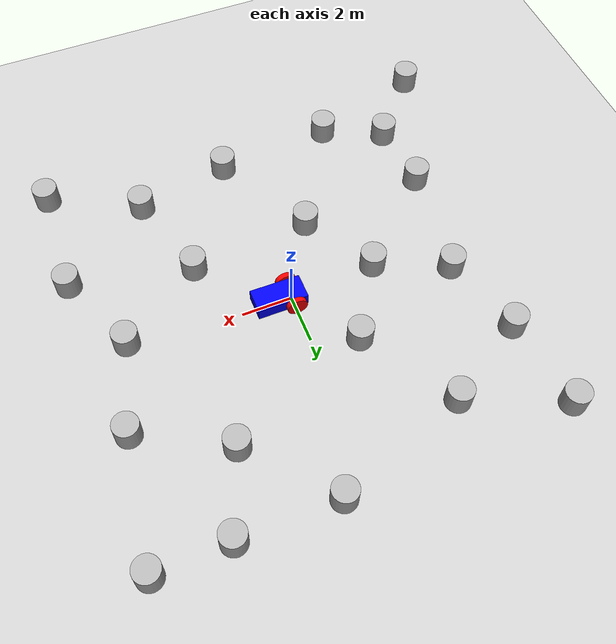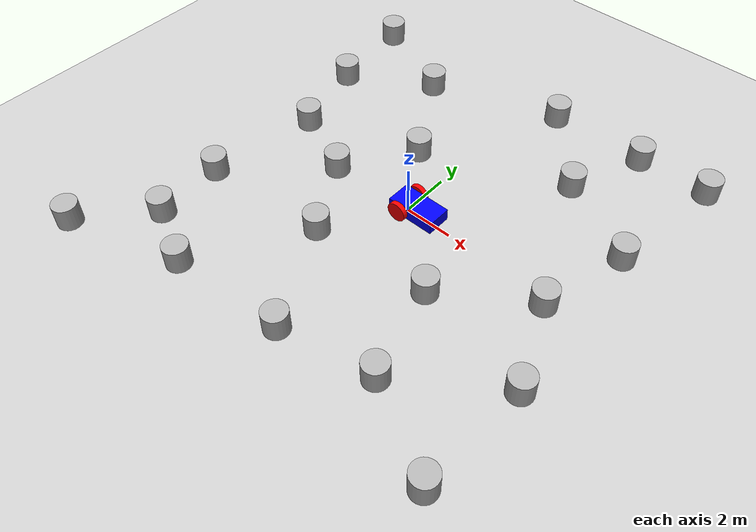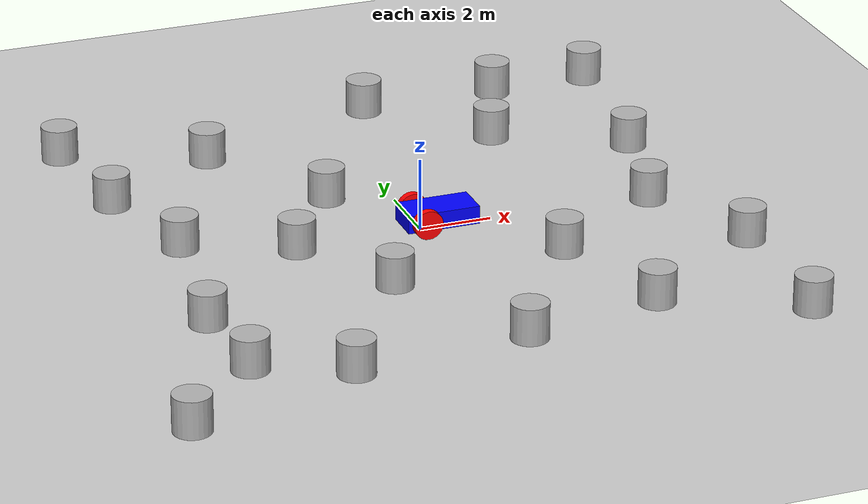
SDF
<sdf version='1.12'>
  <world name='car_world'>
    <physics name='1ms' type='ignored'>
      <max_step_size>0.001</max_step_size>
      <real_time_factor>1</real_time_factor>
      <real_time_update_rate>1000</real_time_update_rate>
    </physics>
    <plugin name='gz::sim::systems::Physics' filename='gz-sim-physics-system'/>
    <plugin name='gz::sim::systems::UserCommands' filename='gz-sim-user-commands-system'/>
    <plugin name='gz::sim::systems::SceneBroadcaster' filename='gz-sim-scene-broadcaster-system'/>
    <gravity>0 0 -9.8000000000000007</gravity>
    <magnetic_field>5.5644999999999998e-06 2.2875799999999999e-05 -4.2388400000000002e-05</magnetic_field>
    <atmosphere type='adiabatic'/>
    <scene>
      <ambient>0.400000006 0.400000006 0.400000006 1</ambient>
      <background>0.699999988 0.699999988 0.699999988 1</background>
      <shadows>true</shadows>
    </scene>
    <model name='ground_plane'>
      <static>true</static>
      <link name='link'>
        <collision name='collision'>
          <geometry>
            <plane>
              <normal>0 0 1</normal>
              <size>1 1</size>
            </plane>
          </geometry>
          <surface>
            <friction>
              <ode/>
            </friction>
            <bounce/>
            <contact/>
          </surface>
        </collision>
        <visual name='visual'>
          <geometry>
            <plane>
              <normal>0 0 1</normal>
              <size>100 100</size>
            </plane>
          </geometry>
          <material>
            <ambient>0.800000012 0.800000012 0.800000012 1</ambient>
            <diffuse>0.800000012 0.800000012 0.800000012 1</diffuse>
            <specular>0.800000012 0.800000012 0.800000012 1</specular>
          </material>
        </visual>
        <pose>0 0 0 0 0 0</pose>
        <inertial>
          <pose>0 0 0 0 0 0</pose>
          <mass>1</mass>
          <inertia>
            <ixx>1</ixx>
            <ixy>0</ixy>
            <ixz>0</ixz>
            <iyy>1</iyy>
            <iyz>0</iyz>
            <izz>1</izz>
          </inertia>
        </inertial>
        <enable_wind>false</enable_wind>
      </link>
      <pose>0 0 0 0 0 0</pose>
      <self_collide>false</self_collide>
    </model>
    <model name='vehicle_blue' canonical_link='chassis'>
      <pose>0 0 0 0 0 0</pose>
      <link name='chassis'>
        <pose>0.5 0 0.40000000000000002 0 0 0</pose>
        <inertial>
          <mass>1.14395</mass>
          <inertia>
            <ixx>0.095328999999999997</ixx>
            <ixy>0</ixy>
            <ixz>0</ixz>
            <iyy>0.38131700000000002</iyy>
            <iyz>0</iyz>
            <izz>0.47664600000000001</izz>
          </inertia>
          <pose>0 0 0 0 0 0</pose>
        </inertial>
        <visual name='visual'>
          <geometry>
            <box>
              <size>2 1 0.5</size>
            </box>
          </geometry>
          <material>
            <ambient>0 0 1 1</ambient>
            <diffuse>0 0 1 1</diffuse>
            <specular>0 0 1 1</specular>
          </material>
        </visual>
        <collision name='collision'>
          <geometry>
            <box>
              <size>2 1 0.5</size>
            </box>
          </geometry>
          <surface>
            <friction>
              <ode/>
            </friction>
            <bounce/>
            <contact/>
          </surface>
        </collision>
        <enable_wind>false</enable_wind>
      </link>
      <link name='left_wheel'>
        <pose>0 0.59999999999999998 0.40000000000000002 -1.5706999999999995 0 0</pose>
        <inertial>
          <mass>1</mass>
          <inertia>
            <ixx>0.043333000000000003</ixx>
            <ixy>0</ixy>
            <ixz>0</ixz>
            <iyy>0.043333000000000003</iyy>
            <iyz>0</iyz>
            <izz>0.080000000000000002</izz>
          </inertia>
          <pose>0 0 0 0 0 0</pose>
        </inertial>
        <visual name='visual'>
          <geometry>
            <cylinder>
              <radius>0.40000000000000002</radius>
              <length>0.20000000000000001</length>
            </cylinder>
          </geometry>
          <material>
            <ambient>1 0 0 1</ambient>
            <diffuse>1 0 0 1</diffuse>
            <specular>1 0 0 1</specular>
          </material>
        </visual>
        <collision name='collision'>
          <geometry>
            <cylinder>
              <radius>0.40000000000000002</radius>
              <length>0.20000000000000001</length>
            </cylinder>
          </geometry>
          <surface>
            <friction>
              <ode/>
            </friction>
            <bounce/>
            <contact/>
          </surface>
        </collision>
        <enable_wind>false</enable_wind>
      </link>
      <link name='right_wheel'>
        <pose>0 -0.59999999999999998 0.40000000000000002 -1.5706999999999995 0 0</pose>
        <inertial>
          <mass>1</mass>
          <inertia>
            <ixx>0.043333000000000003</ixx>
            <ixy>0</ixy>
            <ixz>0</ixz>
            <iyy>0.043333000000000003</iyy>
            <iyz>0</iyz>
            <izz>0.080000000000000002</izz>
          </inertia>
          <pose>0 0 0 0 0 0</pose>
        </inertial>
        <visual name='visual'>
          <geometry>
            <cylinder>
              <radius>0.40000000000000002</radius>
              <length>0.20000000000000001</length>
            </cylinder>
          </geometry>
          <material>
            <ambient>1 0 0 1</ambient>
            <diffuse>1 0 0 1</diffuse>
            <specular>1 0 0 1</specular>
          </material>
        </visual>
        <collision name='collision'>
          <geometry>
            <cylinder>
              <radius>0.40000000000000002</radius>
              <length>0.20000000000000001</length>
            </cylinder>
          </geometry>
          <surface>
            <friction>
              <ode/>
            </friction>
            <bounce/>
            <contact/>
          </surface>
        </collision>
        <enable_wind>false</enable_wind>
      </link>
      <frame name='caster_frame' attached_to='chassis'>
        <pose>0.80000000000000004 0 -0.20000000000000001 0 0 0</pose>
      </frame>
      <link name='caster'>
        <pose>1.3 0 0.20000000000000001 0 0 0</pose>
        <inertial>
          <mass>1</mass>
          <inertia>
            <ixx>0.016</ixx>
            <ixy>0</ixy>
            <ixz>0</ixz>
            <iyy>0.016</iyy>
            <iyz>0</iyz>
            <izz>0.016</izz>
          </inertia>
          <pose>0 0 0 0 0 0</pose>
        </inertial>
        <visual name='visual'>
          <geometry>
            <sphere>
              <radius>0.20000000000000001</radius>
            </sphere>
          </geometry>
          <material>
            <ambient>0 1 0 1</ambient>
            <diffuse>0 1 0 1</diffuse>
            <specular>0 1 0 1</specular>
          </material>
        </visual>
        <collision name='collision'>
          <geometry>
            <sphere>
              <radius>0.20000000000000001</radius>
            </sphere>
          </geometry>
          <surface>
            <friction>
              <ode/>
            </friction>
            <bounce/>
            <contact/>
          </surface>
        </collision>
        <enable_wind>false</enable_wind>
      </link>
      <joint name='left_wheel_joint' type='revolute'>
        <pose>0 0 0 -1.2671444049156495e-17 0 0</pose>
        <parent>chassis</parent>
        <child>left_wheel</child>
        <axis>
          <xyz>0 9.6326794747692026e-05 0.99999999536057438</xyz>
          <limit>
            <lower>-1.7976900000000001e+308</lower>
            <upper>1.7976900000000001e+308</upper>
            <effort>inf</effort>
            <velocity>inf</velocity>
            <stiffness>100000000</stiffness>
            <dissipation>1</dissipation>
          </limit>
          <dynamics>
            <spring_reference>0</spring_reference>
            <spring_stiffness>0</spring_stiffness>
            <damping>0</damping>
            <friction>0</friction>
          </dynamics>
        </axis>
      </joint>
      <joint name='right_wheel_joint' type='revolute'>
        <pose>0 1.1102230246251565e-16 0 -1.2671444049156495e-17 0 0</pose>
        <parent>chassis</parent>
        <child>right_wheel</child>
        <axis>
          <xyz>0 9.6326794747692026e-05 0.99999999536057438</xyz>
          <limit>
            <lower>-1.7976900000000001e+308</lower>
            <upper>1.7976900000000001e+308</upper>
            <effort>inf</effort>
            <velocity>inf</velocity>
            <stiffness>100000000</stiffness>
            <dissipation>1</dissipation>
          </limit>
          <dynamics>
            <spring_reference>0</spring_reference>
            <spring_stiffness>0</spring_stiffness>
            <damping>0</damping>
            <friction>0</friction>
          </dynamics>
        </axis>
      </joint>
      <joint name='caster_wheel' type='ball'>
        <parent>chassis</parent>
        <child>caster</child>
        <pose>0 0 0 0 0 0</pose>
      </joint>
      <static>false</static>
      <self_collide>false</self_collide>
    </model>
    <model name='cylinder'>
      <pose>-1.8146579833596665 -3.0451954354805792 0.5 0 0 0</pose>
      <link name='cylinder_link'>
        <inertial>
          <inertia>
            <ixx>0.14580000000000001</ixx>
            <ixy>0</ixy>
            <ixz>0</ixz>
            <iyy>0.14580000000000001</iyy>
            <iyz>0</iyz>
            <izz>0.125</izz>
          </inertia>
          <mass>1</mass>
          <pose>0 0 0 0 0 0</pose>
        </inertial>
        <collision name='cylinder_collision'>
          <geometry>
            <cylinder>
              <radius>0.5</radius>
              <length>1</length>
            </cylinder>
          </geometry>
          <surface>
            <friction>
              <ode/>
            </friction>
            <bounce/>
            <contact/>
          </surface>
        </collision>
        <visual name='cylinder_visual'>
          <geometry>
            <cylinder>
              <radius>0.5</radius>
              <length>1</length>
            </cylinder>
          </geometry>
          <material>
            <ambient>0.300000012 0.300000012 0.300000012 1</ambient>
            <diffuse>0.699999988 0.699999988 0.699999988 1</diffuse>
            <specular>1 1 1 1</specular>
          </material>
        </visual>
        <pose>0 0 0 0 0 0</pose>
        <enable_wind>false</enable_wind>
      </link>
      <static>false</static>
      <self_collide>false</self_collide>
    </model>
    <model name='cylinder_0'>
      <pose>-1.7072953642744841 2.6300254607186999 0.5 0 0 0</pose>
      <link name='cylinder_link'>
        <inertial>
          <inertia>
            <ixx>0.14580000000000001</ixx>
            <ixy>0</ixy>
            <ixz>0</ixz>
            <iyy>0.14580000000000001</iyy>
            <iyz>0</iyz>
            <izz>0.125</izz>
          </inertia>
          <mass>1</mass>
          <pose>0 0 0 0 0 0</pose>
        </inertial>
        <collision name='cylinder_collision'>
          <geometry>
            <cylinder>
              <radius>0.5</radius>
              <length>1</length>
            </cylinder>
          </geometry>
          <surface>
            <friction>
              <ode/>
            </friction>
            <bounce/>
            <contact/>
          </surface>
        </collision>
        <visual name='cylinder_visual'>
          <geometry>
            <cylinder>
              <radius>0.5</radius>
              <length>1</length>
            </cylinder>
          </geometry>
          <material>
            <ambient>0.300000012 0.300000012 0.300000012 1</ambient>
            <diffuse>0.699999988 0.699999988 0.699999988 1</diffuse>
            <specular>1 1 1 1</specular>
          </material>
        </visual>
        <pose>0 0 0 0 0 0</pose>
        <enable_wind>false</enable_wind>
      </link>
      <static>false</static>
      <self_collide>false</self_collide>
    </model>
    <model name='cylinder_1'>
      <pose>-3.5069988444572879 -0.21020726964109379 0.5 0 0 0</pose>
      <link name='cylinder_link'>
        <inertial>
          <inertia>
            <ixx>0.14580000000000001</ixx>
            <ixy>0</ixy>
            <ixz>0</ixz>
            <iyy>0.14580000000000001</iyy>
            <iyz>0</iyz>
            <izz>0.125</izz>
          </inertia>
          <mass>1</mass>
          <pose>0 0 0 0 0 0</pose>
        </inertial>
        <collision name='cylinder_collision'>
          <geometry>
            <cylinder>
              <radius>0.5</radius>
              <length>1</length>
            </cylinder>
          </geometry>
          <surface>
            <friction>
              <ode/>
            </friction>
            <bounce/>
            <contact/>
          </surface>
        </collision>
        <visual name='cylinder_visual'>
          <geometry>
            <cylinder>
              <radius>0.5</radius>
              <length>1</length>
            </cylinder>
          </geometry>
          <material>
            <ambient>0.300000012 0.300000012 0.300000012 1</ambient>
            <diffuse>0.699999988 0.699999988 0.699999988 1</diffuse>
            <specular>1 1 1 1</specular>
          </material>
        </visual>
        <pose>0 0 0 0 0 0</pose>
        <enable_wind>false</enable_wind>
      </link>
      <static>false</static>
      <self_collide>false</self_collide>
    </model>
    <model name='cylinder_2'>
      <pose>3.9950500015591146 5.0403141007760119 0.5 0 0 0</pose>
      <link name='cylinder_link'>
        <inertial>
          <inertia>
            <ixx>0.14580000000000001</ixx>
            <ixy>0</ixy>
            <ixz>0</ixz>
            <iyy>0.14580000000000001</iyy>
            <iyz>0</iyz>
            <izz>0.125</izz>
          </inertia>
          <mass>1</mass>
          <pose>0 0 0 0 0 0</pose>
        </inertial>
        <collision name='cylinder_collision'>
          <geometry>
            <cylinder>
              <radius>0.5</radius>
              <length>1</length>
            </cylinder>
          </geometry>
          <surface>
            <friction>
              <ode/>
            </friction>
            <bounce/>
            <contact/>
          </surface>
        </collision>
        <visual name='cylinder_visual'>
          <geometry>
            <cylinder>
              <radius>0.5</radius>
              <length>1</length>
            </cylinder>
          </geometry>
          <material>
            <ambient>0.300000012 0.300000012 0.300000012 1</ambient>
            <diffuse>0.699999988 0.699999988 0.699999988 1</diffuse>
            <specular>1 1 1 1</specular>
          </material>
        </visual>
        <pose>0 0 0 0 0 0</pose>
        <enable_wind>false</enable_wind>
      </link>
      <static>false</static>
      <self_collide>false</self_collide>
    </model>
    <model name='cylinder_3'>
      <pose>6.4283499519004117 -0.34131309993354775 0.5 0 0 0</pose>
      <link name='cylinder_link'>
        <inertial>
          <inertia>
            <ixx>0.14580000000000001</ixx>
            <ixy>0</ixy>
            <ixz>0</ixz>
            <iyy>0.14580000000000001</iyy>
            <iyz>0</iyz>
            <izz>0.125</izz>
          </inertia>
          <mass>1</mass>
          <pose>0 0 0 0 0 0</pose>
        </inertial>
        <collision name='cylinder_collision'>
          <geometry>
            <cylinder>
              <radius>0.5</radius>
              <length>1</length>
            </cylinder>
          </geometry>
          <surface>
            <friction>
              <ode/>
            </friction>
            <bounce/>
            <contact/>
          </surface>
        </collision>
        <visual name='cylinder_visual'>
          <geometry>
            <cylinder>
              <radius>0.5</radius>
              <length>1</length>
            </cylinder>
          </geometry>
          <material>
            <ambient>0.300000012 0.300000012 0.300000012 1</ambient>
            <diffuse>0.699999988 0.699999988 0.699999988 1</diffuse>
            <specular>1 1 1 1</specular>
          </material>
        </visual>
        <pose>0 0 0 0 0 0</pose>
        <enable_wind>false</enable_wind>
      </link>
      <static>false</static>
      <self_collide>false</self_collide>
    </model>
    <model name='cylinder_4'>
      <pose>7.3641481135731333 3.1990305971379924 0.5 0 0 0</pose>
      <link name='cylinder_link'>
        <inertial>
          <inertia>
            <ixx>0.14580000000000001</ixx>
            <ixy>0</ixy>
            <ixz>0</ixz>
            <iyy>0.14580000000000001</iyy>
            <iyz>0</iyz>
            <izz>0.125</izz>
          </inertia>
          <mass>1</mass>
          <pose>0 0 0 0 0 0</pose>
        </inertial>
        <collision name='cylinder_collision'>
          <geometry>
            <cylinder>
              <radius>0.5</radius>
              <length>1</length>
            </cylinder>
          </geometry>
          <surface>
            <friction>
              <ode/>
            </friction>
            <bounce/>
            <contact/>
          </surface>
        </collision>
        <visual name='cylinder_visual'>
          <geometry>
            <cylinder>
              <radius>0.5</radius>
              <length>1</length>
            </cylinder>
          </geometry>
          <material>
            <ambient>0.300000012 0.300000012 0.300000012 1</ambient>
            <diffuse>0.699999988 0.699999988 0.699999988 1</diffuse>
            <specular>1 1 1 1</specular>
          </material>
        </visual>
        <pose>0 0 0 0 0 0</pose>
        <enable_wind>false</enable_wind>
      </link>
      <static>false</static>
      <self_collide>false</self_collide>
    </model>
    <model name='cylinder_5'>
      <pose>7.5981081803759949 -8.0589427279792503 0.5 0 0 0</pose>
      <link name='cylinder_link'>
        <inertial>
          <inertia>
            <ixx>0.14580000000000001</ixx>
            <ixy>0</ixy>
            <ixz>0</ixz>
            <iyy>0.14580000000000001</iyy>
            <iyz>0</iyz>
            <izz>0.125</izz>
          </inertia>
          <mass>1</mass>
          <pose>0 0 0 0 0 0</pose>
        </inertial>
        <collision name='cylinder_collision'>
          <geometry>
            <cylinder>
              <radius>0.5</radius>
              <length>1</length>
            </cylinder>
          </geometry>
          <surface>
            <friction>
              <ode/>
            </friction>
            <bounce/>
            <contact/>
          </surface>
        </collision>
        <visual name='cylinder_visual'>
          <geometry>
            <cylinder>
              <radius>0.5</radius>
              <length>1</length>
            </cylinder>
          </geometry>
          <material>
            <ambient>0.300000012 0.300000012 0.300000012 1</ambient>
            <diffuse>0.699999988 0.699999988 0.699999988 1</diffuse>
            <specular>1 1 1 1</specular>
          </material>
        </visual>
        <pose>0 0 0 0 0 0</pose>
        <enable_wind>false</enable_wind>
      </link>
      <static>false</static>
      <self_collide>false</self_collide>
    </model>
    <model name='cylinder_6'>
      <pose>0.29674676756147811 -7.0438700002195249 0.5 0 0 0</pose>
      <link name='cylinder_link'>
        <inertial>
          <inertia>
            <ixx>0.14580000000000001</ixx>
            <ixy>0</ixy>
            <ixz>0</ixz>
            <iyy>0.14580000000000001</iyy>
            <iyz>0</iyz>
            <izz>0.125</izz>
          </inertia>
          <mass>1</mass>
          <pose>0 0 0 0 0 0</pose>
        </inertial>
        <collision name='cylinder_collision'>
          <geometry>
            <cylinder>
              <radius>0.5</radius>
              <length>1</length>
            </cylinder>
          </geometry>
          <surface>
            <friction>
              <ode/>
            </friction>
            <bounce/>
            <contact/>
          </surface>
        </collision>
        <visual name='cylinder_visual'>
          <geometry>
            <cylinder>
              <radius>0.5</radius>
              <length>1</length>
            </cylinder>
          </geometry>
          <material>
            <ambient>0.300000012 0.300000012 0.300000012 1</ambient>
            <diffuse>0.699999988 0.699999988 0.699999988 1</diffuse>
            <specular>1 1 1 1</specular>
          </material>
        </visual>
        <pose>0 0 0 0 0 0</pose>
        <enable_wind>false</enable_wind>
      </link>
      <static>false</static>
      <self_collide>false</self_collide>
    </model>
    <model name='cylinder_6_1'>
      <pose>4.0877480600358655 -6.2769708179607182 0.5 0 0 0</pose>
      <link name='cylinder_link'>
        <inertial>
          <inertia>
            <ixx>0.14580000000000001</ixx>
            <ixy>0</ixy>
            <ixz>0</ixz>
            <iyy>0.14580000000000001</iyy>
            <iyz>0</iyz>
            <izz>0.125</izz>
          </inertia>
          <mass>1</mass>
        </inertial>
        <collision name='cylinder_collision'>
          <geometry>
            <cylinder>
              <radius>0.5</radius>
              <length>1</length>
            </cylinder>
          </geometry>
          <surface>
            <friction>
              <ode/>
            </friction>
            <bounce/>
            <contact/>
          </surface>
        </collision>
        <visual name='cylinder_visual'>
          <geometry>
            <cylinder>
              <radius>0.5</radius>
              <length>1</length>
            </cylinder>
          </geometry>
          <material>
            <ambient>0.300000012 0.300000012 0.300000012 1</ambient>
            <diffuse>0.699999988 0.699999988 0.699999988 1</diffuse>
            <specular>1 1 1 1</specular>
          </material>
        </visual>
      </link>
      <static>false</static>
      <self_collide>false</self_collide>
    </model>
    <model name='cylinder_6_2'>
      <pose>-3.9337551411479517 6.2303501529946743 0.5 0 0 0</pose>
      <link name='cylinder_link'>
        <inertial>
          <inertia>
            <ixx>0.14580000000000001</ixx>
            <ixy>0</ixy>
            <ixz>0</ixz>
            <iyy>0.14580000000000001</iyy>
            <iyz>0</iyz>
            <izz>0.125</izz>
          </inertia>
          <mass>1</mass>
        </inertial>
        <collision name='cylinder_collision'>
          <geometry>
            <cylinder>
              <radius>0.5</radius>
              <length>1</length>
            </cylinder>
          </geometry>
          <surface>
            <friction>
              <ode/>
            </friction>
            <bounce/>
            <contact/>
          </surface>
        </collision>
        <visual name='cylinder_visual'>
          <geometry>
            <cylinder>
              <radius>0.5</radius>
              <length>1</length>
            </cylinder>
          </geometry>
          <material>
            <ambient>0.300000012 0.300000012 0.300000012 1</ambient>
            <diffuse>0.699999988 0.699999988 0.699999988 1</diffuse>
            <specular>1 1 1 1</specular>
          </material>
        </visual>
      </link>
      <static>false</static>
      <self_collide>false</self_collide>
    </model>
    <model name='cylinder_6_3'>
      <pose>-6.3227175280693153 1.010301284259953 0.5 0 0 0</pose>
      <link name='cylinder_link'>
        <inertial>
          <inertia>
            <ixx>0.14580000000000001</ixx>
            <ixy>0</ixy>
            <ixz>0</ixz>
            <iyy>0.14580000000000001</iyy>
            <iyz>0</iyz>
            <izz>0.125</izz>
          </inertia>
          <mass>1</mass>
        </inertial>
        <collision name='cylinder_collision'>
          <geometry>
            <cylinder>
              <radius>0.5</radius>
              <length>1</length>
            </cylinder>
          </geometry>
          <surface>
            <friction>
              <ode/>
            </friction>
            <bounce/>
            <contact/>
          </surface>
        </collision>
        <visual name='cylinder_visual'>
          <geometry>
            <cylinder>
              <radius>0.5</radius>
              <length>1</length>
            </cylinder>
          </geometry>
          <material>
            <ambient>0.300000012 0.300000012 0.300000012 1</ambient>
            <diffuse>0.699999988 0.699999988 0.699999988 1</diffuse>
            <specular>1 1 1 1</specular>
          </material>
        </visual>
      </link>
      <static>false</static>
      <self_collide>false</self_collide>
    </model>
    <model name='cylinder_6_4'>
      <pose>-6.7750472152112833 -6.2983400879595406 0.5 0 0 0</pose>
      <link name='cylinder_link'>
        <inertial>
          <inertia>
            <ixx>0.14580000000000001</ixx>
            <ixy>0</ixy>
            <ixz>0</ixz>
            <iyy>0.14580000000000001</iyy>
            <iyz>0</iyz>
            <izz>0.125</izz>
          </inertia>
          <mass>1</mass>
        </inertial>
        <collision name='cylinder_collision'>
          <geometry>
            <cylinder>
              <radius>0.5</radius>
              <length>1</length>
            </cylinder>
          </geometry>
          <surface>
            <friction>
              <ode/>
            </friction>
            <bounce/>
            <contact/>
          </surface>
        </collision>
        <visual name='cylinder_visual'>
          <geometry>
            <cylinder>
              <radius>0.5</radius>
              <length>1</length>
            </cylinder>
          </geometry>
          <material>
            <ambient>0.300000012 0.300000012 0.300000012 1</ambient>
            <diffuse>0.699999988 0.699999988 0.699999988 1</diffuse>
            <specular>1 1 1 1</specular>
          </material>
        </visual>
      </link>
      <static>false</static>
      <self_collide>false</self_collide>
    </model>
    <model name='cylinder_6_5'>
      <pose>-4.4168999962343864 -7.4225673923949262 0.5 0 0 0</pose>
      <link name='cylinder_link'>
        <inertial>
          <inertia>
            <ixx>0.14580000000000001</ixx>
            <ixy>0</ixy>
            <ixz>0</ixz>
            <iyy>0.14580000000000001</iyy>
            <iyz>0</iyz>
            <izz>0.125</izz>
          </inertia>
          <mass>1</mass>
        </inertial>
        <collision name='cylinder_collision'>
          <geometry>
            <cylinder>
              <radius>0.5</radius>
              <length>1</length>
            </cylinder>
          </geometry>
          <surface>
            <friction>
              <ode/>
            </friction>
            <bounce/>
            <contact/>
          </surface>
        </collision>
        <visual name='cylinder_visual'>
          <geometry>
            <cylinder>
              <radius>0.5</radius>
              <length>1</length>
            </cylinder>
          </geometry>
          <material>
            <ambient>0.300000012 0.300000012 0.300000012 1</ambient>
            <diffuse>0.699999988 0.699999988 0.699999988 1</diffuse>
            <specular>1 1 1 1</specular>
          </material>
        </visual>
      </link>
      <static>false</static>
      <self_collide>false</self_collide>
    </model>
    <model name='cylinder_6_6'>
      <pose>-6.9842274538545297 -3.507637324592972 0.5 0 0 0</pose>
      <link name='cylinder_link'>
        <inertial>
          <inertia>
            <ixx>0.14580000000000001</ixx>
            <ixy>0</ixy>
            <ixz>0</ixz>
            <iyy>0.14580000000000001</iyy>
            <iyz>0</iyz>
            <izz>0.125</izz>
          </inertia>
          <mass>1</mass>
        </inertial>
        <collision name='cylinder_collision'>
          <geometry>
            <cylinder>
              <radius>0.5</radius>
              <length>1</length>
            </cylinder>
          </geometry>
          <surface>
            <friction>
              <ode/>
            </friction>
            <bounce/>
            <contact/>
          </surface>
        </collision>
        <visual name='cylinder_visual'>
          <geometry>
            <cylinder>
              <radius>0.5</radius>
              <length>1</length>
            </cylinder>
          </geometry>
          <material>
            <ambient>0.300000012 0.300000012 0.300000012 1</ambient>
            <diffuse>0.699999988 0.699999988 0.699999988 1</diffuse>
            <specular>1 1 1 1</specular>
          </material>
        </visual>
      </link>
      <static>false</static>
      <self_collide>false</self_collide>
    </model>
    <model name='cylinder_6_7'>
      <pose>1.2948700808945333 8.0651916596862137 0.5 0 0 0</pose>
      <link name='cylinder_link'>
        <inertial>
          <inertia>
            <ixx>0.14580000000000001</ixx>
            <ixy>0</ixy>
            <ixz>0</ixz>
            <iyy>0.14580000000000001</iyy>
            <iyz>0</iyz>
            <izz>0.125</izz>
          </inertia>
          <mass>1</mass>
        </inertial>
        <collision name='cylinder_collision'>
          <geometry>
            <cylinder>
              <radius>0.5</radius>
              <length>1</length>
            </cylinder>
          </geometry>
          <surface>
            <friction>
              <ode/>
            </friction>
            <bounce/>
            <contact/>
          </surface>
        </collision>
        <visual name='cylinder_visual'>
          <geometry>
            <cylinder>
              <radius>0.5</radius>
              <length>1</length>
            </cylinder>
          </geometry>
          <material>
            <ambient>0.300000012 0.300000012 0.300000012 1</ambient>
            <diffuse>0.699999988 0.699999988 0.699999988 1</diffuse>
            <specular>1 1 1 1</specular>
          </material>
        </visual>
      </link>
      <static>false</static>
      <self_collide>false</self_collide>
    </model>
    <model name='cylinder_6_8'>
      <pose>-7.2311271099995418 4.2584623059046844 0.5 0 0 0</pose>
      <link name='cylinder_link'>
        <inertial>
          <inertia>
            <ixx>0.14580000000000001</ixx>
            <ixy>0</ixy>
            <ixz>0</ixz>
            <iyy>0.14580000000000001</iyy>
            <iyz>0</iyz>
            <izz>0.125</izz>
          </inertia>
          <mass>1</mass>
        </inertial>
        <collision name='cylinder_collision'>
          <geometry>
            <cylinder>
              <radius>0.5</radius>
              <length>1</length>
            </cylinder>
          </geometry>
          <surface>
            <friction>
              <ode/>
            </friction>
            <bounce/>
            <contact/>
          </surface>
        </collision>
        <visual name='cylinder_visual'>
          <geometry>
            <cylinder>
              <radius>0.5</radius>
              <length>1</length>
            </cylinder>
          </geometry>
          <material>
            <ambient>0.300000012 0.300000012 0.300000012 1</ambient>
            <diffuse>0.699999988 0.699999988 0.699999988 1</diffuse>
            <specular>1 1 1 1</specular>
          </material>
        </visual>
      </link>
      <static>false</static>
      <self_collide>false</self_collide>
    </model>
    <model name='cylinder_6_9'>
      <pose>-7.6890577897140133 7.8314804221641623 0.5 0 0 0</pose>
      <link name='cylinder_link'>
        <inertial>
          <inertia>
            <ixx>0.14580000000000001</ixx>
            <ixy>0</ixy>
            <ixz>0</ixz>
            <iyy>0.14580000000000001</iyy>
            <iyz>0</iyz>
            <izz>0.125</izz>
          </inertia>
          <mass>1</mass>
        </inertial>
        <collision name='cylinder_collision'>
          <geometry>
            <cylinder>
              <radius>0.5</radius>
              <length>1</length>
            </cylinder>
          </geometry>
          <surface>
            <friction>
              <ode/>
            </friction>
            <bounce/>
            <contact/>
          </surface>
        </collision>
        <visual name='cylinder_visual'>
          <geometry>
            <cylinder>
              <radius>0.5</radius>
              <length>1</length>
            </cylinder>
          </geometry>
          <material>
            <ambient>0.300000012 0.300000012 0.300000012 1</ambient>
            <diffuse>0.699999988 0.699999988 0.699999988 1</diffuse>
            <specular>1 1 1 1</specular>
          </material>
        </visual>
      </link>
      <static>false</static>
      <self_collide>false</self_collide>
    </model>
    <model name='cylinder_6_10'>
      <pose>8.0804842941118551 8.1418671255747874 0.5 0 0 0</pose>
      <link name='cylinder_link'>
        <inertial>
          <inertia>
            <ixx>0.14580000000000001</ixx>
            <ixy>0</ixy>
            <ixz>0</ixz>
            <iyy>0.14580000000000001</iyy>
            <iyz>0</iyz>
            <izz>0.125</izz>
          </inertia>
          <mass>1</mass>
        </inertial>
        <collision name='cylinder_collision'>
          <geometry>
            <cylinder>
              <radius>0.5</radius>
              <length>1</length>
            </cylinder>
          </geometry>
          <surface>
            <friction>
              <ode/>
            </friction>
            <bounce/>
            <contact/>
          </surface>
        </collision>
        <visual name='cylinder_visual'>
          <geometry>
            <cylinder>
              <radius>0.5</radius>
              <length>1</length>
            </cylinder>
          </geometry>
          <material>
            <ambient>0.300000012 0.300000012 0.300000012 1</ambient>
            <diffuse>0.699999988 0.699999988 0.699999988 1</diffuse>
            <specular>1 1 1 1</specular>
          </material>
        </visual>
      </link>
      <static>false</static>
      <self_collide>false</self_collide>
    </model>
    <model name='cylinder_6_11'>
      <pose>5.2102689390856014 8.0814566395143004 0.5 0 0 0</pose>
      <link name='cylinder_link'>
        <inertial>
          <inertia>
            <ixx>0.14580000000000001</ixx>
            <ixy>0</ixy>
            <ixz>0</ixz>
            <iyy>0.14580000000000001</iyy>
            <iyz>0</iyz>
            <izz>0.125</izz>
          </inertia>
          <mass>1</mass>
        </inertial>
        <collision name='cylinder_collision'>
          <geometry>
            <cylinder>
              <radius>0.5</radius>
              <length>1</length>
            </cylinder>
          </geometry>
          <surface>
            <friction>
              <ode/>
            </friction>
            <bounce/>
            <contact/>
          </surface>
        </collision>
        <visual name='cylinder_visual'>
          <geometry>
            <cylinder>
              <radius>0.5</radius>
              <length>1</length>
            </cylinder>
          </geometry>
          <material>
            <ambient>0.300000012 0.300000012 0.300000012 1</ambient>
            <diffuse>0.699999988 0.699999988 0.699999988 1</diffuse>
            <specular>1 1 1 1</specular>
          </material>
        </visual>
      </link>
      <static>false</static>
      <self_collide>false</self_collide>
    </model>
    <model name='cylinder_6_12'>
      <pose>7.8212013027852549 -3.629887022793203 0.5 0 0 0</pose>
      <link name='cylinder_link'>
        <inertial>
          <inertia>
            <ixx>0.14580000000000001</ixx>
            <ixy>0</ixy>
            <ixz>0</ixz>
            <iyy>0.14580000000000001</iyy>
            <iyz>0</iyz>
            <izz>0.125</izz>
          </inertia>
          <mass>1</mass>
        </inertial>
        <collision name='cylinder_collision'>
          <geometry>
            <cylinder>
              <radius>0.5</radius>
              <length>1</length>
            </cylinder>
          </geometry>
          <surface>
            <friction>
              <ode/>
            </friction>
            <bounce/>
            <contact/>
          </surface>
        </collision>
        <visual name='cylinder_visual'>
          <geometry>
            <cylinder>
              <radius>0.5</radius>
              <length>1</length>
            </cylinder>
          </geometry>
          <material>
            <ambient>0.300000012 0.300000012 0.300000012 1</ambient>
            <diffuse>0.699999988 0.699999988 0.699999988 1</diffuse>
            <specular>1 1 1 1</specular>
          </material>
        </visual>
      </link>
      <static>false</static>
      <self_collide>false</self_collide>
    </model>
    <model name='cylinder_6_13'>
      <pose>3.0500550271177254 -2.6159273232985241 0.5 0 0 0</pose>
      <link name='cylinder_link'>
        <inertial>
          <inertia>
            <ixx>0.14580000000000001</ixx>
            <ixy>0</ixy>
            <ixz>0</ixz>
            <iyy>0.14580000000000001</iyy>
            <iyz>0</iyz>
            <izz>0.125</izz>
          </inertia>
          <mass>1</mass>
        </inertial>
        <collision name='cylinder_collision'>
          <geometry>
            <cylinder>
              <radius>0.5</radius>
              <length>1</length>
            </cylinder>
          </geometry>
          <surface>
            <friction>
              <ode/>
            </friction>
            <bounce/>
            <contact/>
          </surface>
        </collision>
        <visual name='cylinder_visual'>
          <geometry>
            <cylinder>
              <radius>0.5</radius>
              <length>1</length>
            </cylinder>
          </geometry>
          <material>
            <ambient>0.300000012 0.300000012 0.300000012 1</ambient>
            <diffuse>0.699999988 0.699999988 0.699999988 1</diffuse>
            <specular>1 1 1 1</specular>
          </material>
        </visual>
      </link>
      <static>false</static>
      <self_collide>false</self_collide>
    </model>
    <model name='cylinder_6_14'>
      <pose>-9.0561205003733338 -8.8626861059477786 0.5 0 0 0</pose>
      <link name='cylinder_link'>
        <inertial>
          <inertia>
            <ixx>0.14580000000000001</ixx>
            <ixy>0</ixy>
            <ixz>0</ixz>
            <iyy>0.14580000000000001</iyy>
            <iyz>0</iyz>
            <izz>0.125</izz>
          </inertia>
          <mass>1</mass>
        </inertial>
        <collision name='cylinder_collision'>
          <geometry>
            <cylinder>
              <radius>0.5</radius>
              <length>1</length>
            </cylinder>
          </geometry>
          <surface>
            <friction>
              <ode/>
            </friction>
            <bounce/>
            <contact/>
          </surface>
        </collision>
        <visual name='cylinder_visual'>
          <geometry>
            <cylinder>
              <radius>0.5</radius>
              <length>1</length>
            </cylinder>
          </geometry>
          <material>
            <ambient>0.300000012 0.300000012 0.300000012 1</ambient>
            <diffuse>0.699999988 0.699999988 0.699999988 1</diffuse>
            <specular>1 1 1 1</specular>
          </material>
        </visual>
      </link>
      <static>false</static>
      <self_collide>false</self_collide>
    </model>
    <light name='sun' type='directional'>
      <pose>0 0 10 0 0 0</pose>
      <cast_shadows>true</cast_shadows>
      <intensity>1</intensity>
      <direction>-0.5 0.10000000000000001 -0.90000000000000002</direction>
      <diffuse>0.800000012 0.800000012 0.800000012 1</diffuse>
      <specular>0.200000003 0.200000003 0.200000003 1</specular>
      <attenuation>
        <range>1000</range>
        <linear>0.01</linear>
        <constant>0.90000000000000002</constant>
        <quadratic>0.001</quadratic>
      </attenuation>
      <spot>
        <inner_angle>0</inner_angle>
        <outer_angle>0</outer_angle>
        <falloff>0</falloff>
      </spot>
    </light>
  </world>
</sdf>
